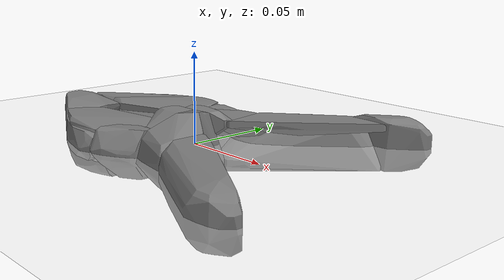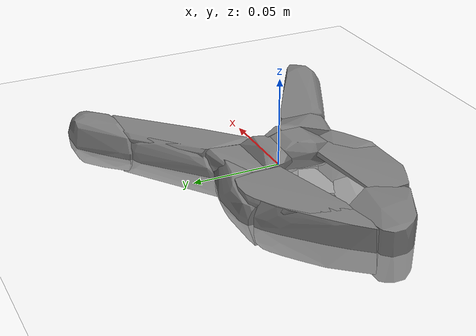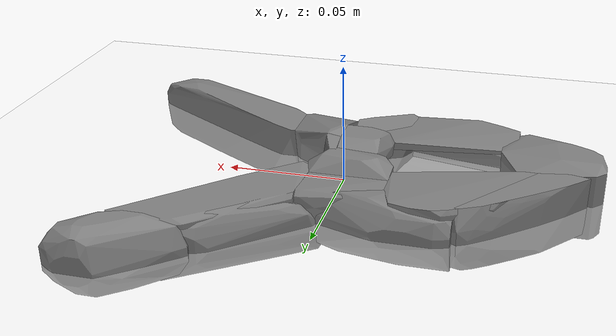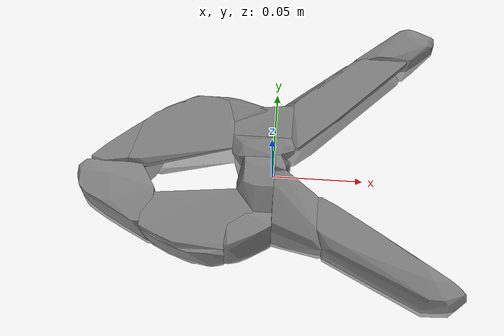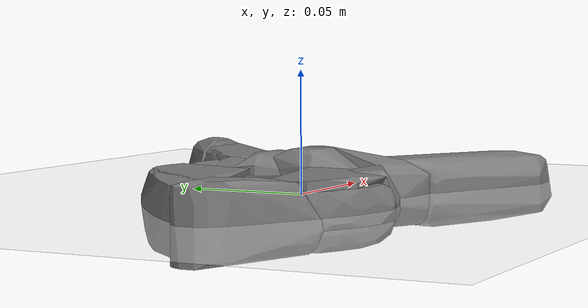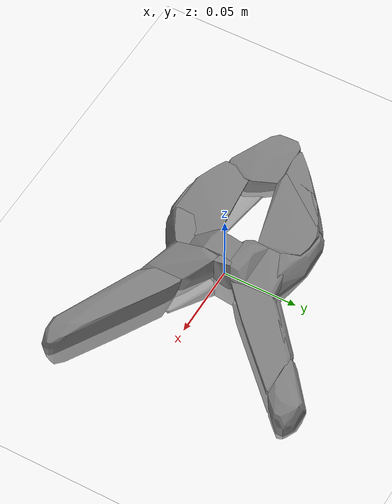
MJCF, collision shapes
<mujoco model="extra_large_clamp">
  <compiler meshdir="assets"/>
  <visual>
    <headlight ambient="0 0 0" diffuse="0 0 0" specular="1 1 1"/>
    <quality shadowsize="8192"/>
  </visual>

  <asset>
	<texture name="extra_large_clamp" file="assets/texture_map.png" type="2d"/>
    <material name="extra_large_clamp" texture="extra_large_clamp" specular="1" shininess="1"/>
    <mesh file="textured_simple.obj" scale="1 1 1"/>
    <mesh file="collision000.obj" scale="1 1 1"/>
    <mesh file="collision001.obj" scale="1 1 1"/>
    <mesh file="collision002.obj" scale="1 1 1"/>
    <mesh file="collision003.obj" scale="1 1 1"/>
    <mesh file="collision004.obj" scale="1 1 1"/>
    <mesh file="collision005.obj" scale="1 1 1"/>
    <mesh file="collision006.obj" scale="1 1 1"/>
    <mesh file="collision007.obj" scale="1 1 1"/>
    <mesh file="collision008.obj" scale="1 1 1"/>
    <mesh file="collision009.obj" scale="1 1 1"/>
    <mesh file="collision010.obj" scale="1 1 1"/>
    <mesh file="collision011.obj" scale="1 1 1"/>
    <mesh file="collision012.obj" scale="1 1 1"/>
    <mesh file="collision013.obj" scale="1 1 1"/>
    <mesh file="collision014.obj" scale="1 1 1"/>
    <mesh file="collision015.obj" scale="1 1 1"/>
    <mesh file="collision016.obj" scale="1 1 1"/>
    <mesh file="collision017.obj" scale="1 1 1"/>
    <mesh file="collision018.obj" scale="1 1 1"/>
    <mesh file="collision019.obj" scale="1 1 1"/>
    <material name="floor" reflectance=".1"/>
  </asset>

  <default>
    <default class="visual">
      <geom type="mesh" group="1" contype="0" conaffinity="0"/>
    </default>
    <default class="collision">
      <geom type="mesh" group="3" mass="0"/>
    </default>
  </default>

  <worldbody>
    <light pos=".4 -.4 .3" dir="-2 2 -1.5" diffuse=".6 .6 .6"/>
    <light pos="-.2 -.4 .3" dir="1 2 -1.5" diffuse=".6 .6 .6"/>
    <geom type="plane" size="5 5 .01" rgba="1 1 1 1" material="floor"/>
    <body name="extra_large_clamp">
      <freejoint/>
      <geom mesh="textured_simple" material="extra_large_clamp" class="visual"/>
	  <geom mesh="collision000" class="collision"/>
	  <geom mesh="collision001" class="collision"/>
	  <geom mesh="collision002" class="collision"/>
	  <geom mesh="collision003" class="collision"/>
	  <geom mesh="collision004" class="collision"/>
	  <geom mesh="collision005" class="collision"/>
	  <geom mesh="collision006" class="collision"/>
	  <geom mesh="collision007" class="collision"/>
	  <geom mesh="collision008" class="collision"/>
	  <geom mesh="collision009" class="collision"/>
	  <geom mesh="collision010" class="collision"/>
	  <geom mesh="collision011" class="collision"/>
	  <geom mesh="collision012" class="collision"/>
	  <geom mesh="collision013" class="collision"/>
	  <geom mesh="collision014" class="collision"/>
	  <geom mesh="collision015" class="collision"/>
	  <geom mesh="collision016" class="collision"/>
	  <geom mesh="collision017" class="collision"/>
	  <geom mesh="collision018" class="collision"/>
	  <geom mesh="collision019" class="collision"/>
    </body>
  </worldbody>
</mujoco>
